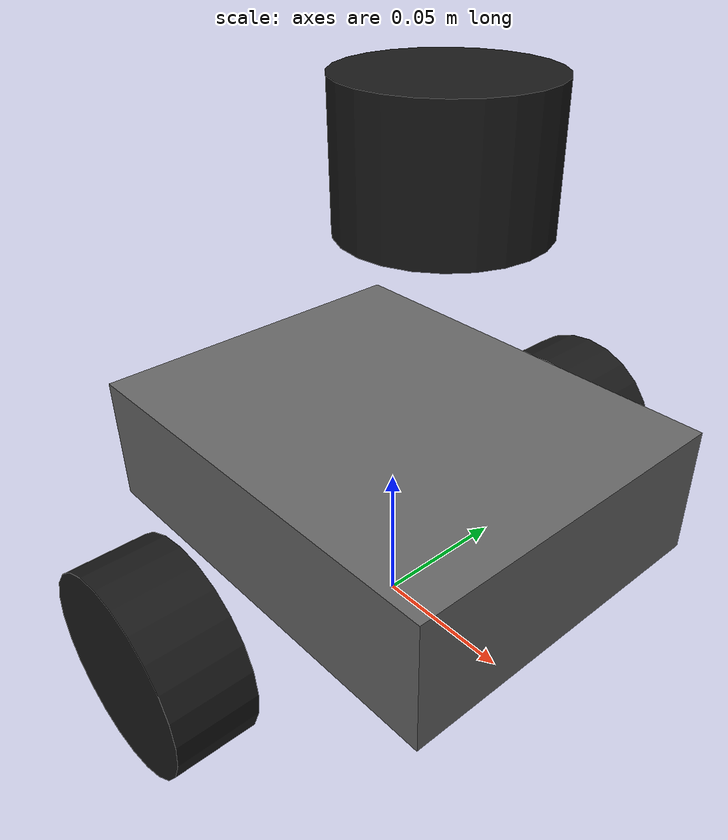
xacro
<?xml version="1.0"?>
<robot name="xe_tu_hanh" xmlns:xacro="http://www.ros.org/wiki/xacro">

  <!-- ==================== THAM SỐ CƠ KHÍ ==================== -->
  <xacro:property name="wheel_diameter"  value="0.065"/>   <!-- D = 65 mm -->
  <xacro:property name="wheel_radius"    value="${wheel_diameter/2}"/>
  <xacro:property name="wheel_track"     value="0.185"/>   <!-- L = 185 mm, TÂM-TÂM -->
  <xacro:property name="wheel_width"     value="0.026"/>
  <xacro:property name="wheel_mass"      value="0.045"/>

  <xacro:property name="chassis_len"     value="0.150"/>
  <xacro:property name="chassis_wid"     value="0.120"/>
  <xacro:property name="chassis_hgt"     value="0.045"/>
  <xacro:property name="chassis_mass"    value="0.400"/>

  <!-- Chiều cao trục bánh so với mặt đất = bán kính bánh -->
  <xacro:property name="axle_height"     value="${wheel_radius}"/>

  <!-- Vị trí LiDAR (gắn trên đỉnh cột). ĐO THỰC TẾ RỒI SỬA!
       Sai số ở đây trực tiếp làm lệch bản đồ. -->
  <xacro:property name="lidar_x"         value="0.020"/>
  <xacro:property name="lidar_y"         value="0.000"/>
  <xacro:property name="lidar_z"         value="${chassis_hgt + 0.085}"/>

  <!-- Vị trí IMU (đặt gần tâm quay để giảm gia tốc ly tâm) -->
  <xacro:property name="imu_x"           value="0.000"/>
  <xacro:property name="imu_y"           value="0.000"/>
  <xacro:property name="imu_z"           value="0.005"/>

  <!-- ==================== VẬT LIỆU ==================== -->
  <material name="xam">   <color rgba="0.4 0.4 0.4 1.0"/></material>
  <material name="den">   <color rgba="0.1 0.1 0.1 1.0"/></material>
  <material name="do">    <color rgba="0.8 0.1 0.1 1.0"/></material>
  <material name="xanh">  <color rgba="0.1 0.3 0.8 1.0"/></material>

  <!-- ==================== MACRO QUÁN TÍNH ==================== -->
  <xacro:macro name="khoi_hop" params="mass x y z">
    <inertial>
      <mass value="${mass}"/>
      <origin xyz="0 0 0"/>
      <inertia
        ixx="${mass*(y*y+z*z)/12.0}" ixy="0" ixz="0"
        iyy="${mass*(x*x+z*z)/12.0}" iyz="0"
        izz="${mass*(x*x+y*y)/12.0}"/>
    </inertial>
  </xacro:macro>

  <xacro:macro name="khoi_tru" params="mass radius length">
    <inertial>
      <mass value="${mass}"/>
      <origin xyz="0 0 0" rpy="0 0 0"/>
      <!-- trụ quay quanh trục y (bánh xe nằm ngang) -->
      <inertia
        ixx="${mass*(3*radius*radius + length*length)/12.0}" ixy="0" ixz="0"
        iyy="${mass*radius*radius/2.0}" iyz="0"
        izz="${mass*(3*radius*radius + length*length)/12.0}"/>
    </inertial>
  </xacro:macro>

  <link name="base_footprint"/>

  <joint name="base_footprint_to_base_link" type="fixed">
    <parent link="base_footprint"/>
    <child  link="base_link"/>
    <origin xyz="0 0 ${axle_height}" rpy="0 0 0"/>
  </joint>

  <!-- ==================================================================
       base_link — thân robot, gốc tại TÂM TRỤC BÁNH
       ================================================================== -->
  <link name="base_link">
    <visual>
      <origin xyz="0 0 ${chassis_hgt/2}" rpy="0 0 0"/>
      <geometry>
        <box size="${chassis_len} ${chassis_wid} ${chassis_hgt}"/>
      </geometry>
      <material name="xam"/>
    </visual>
    <collision>
      <origin xyz="0 0 ${chassis_hgt/2}" rpy="0 0 0"/>
      <geometry>
        <box size="${chassis_len} ${chassis_wid} ${chassis_hgt}"/>
      </geometry>
    </collision>
    <xacro:khoi_hop mass="${chassis_mass}"
                    x="${chassis_len}" y="${chassis_wid}" z="${chassis_hgt}"/>
  </link>

  <!-- ==================== BÁNH TRÁI ==================== -->
  <joint name="wheel_left_joint" type="continuous">
    <parent link="base_link"/>
    <child  link="wheel_left_link"/>
    <origin xyz="0 ${wheel_track/2} 0" rpy="${-pi/2} 0 0"/>
    <axis xyz="0 0 1"/>
    <dynamics damping="0.02" friction="0.05"/>
  </joint>

  <link name="wheel_left_link">
    <visual>
      <geometry><cylinder radius="${wheel_radius}" length="${wheel_width}"/></geometry>
      <material name="den"/>
    </visual>
    <collision>
      <geometry><cylinder radius="${wheel_radius}" length="${wheel_width}"/></geometry>
    </collision>
    <xacro:khoi_tru mass="${wheel_mass}"
                    radius="${wheel_radius}" length="${wheel_width}"/>
  </link>

  <!-- ==================== BÁNH PHẢI ==================== -->
  <joint name="wheel_right_joint" type="continuous">
    <parent link="base_link"/>
    <child  link="wheel_right_link"/>
    <origin xyz="0 ${-wheel_track/2} 0" rpy="${-pi/2} 0 0"/>
    <axis xyz="0 0 1"/>
    <dynamics damping="0.02" friction="0.05"/>
  </joint>

  <link name="wheel_right_link">
    <visual>
      <geometry><cylinder radius="${wheel_radius}" length="${wheel_width}"/></geometry>
      <material name="den"/>
    </visual>
    <collision>
      <geometry><cylinder radius="${wheel_radius}" length="${wheel_width}"/></geometry>
    </collision>
    <xacro:khoi_tru mass="${wheel_mass}"
                    radius="${wheel_radius}" length="${wheel_width}"/>
  </link>

  <joint name="caster_joint" type="fixed">
    <parent link="base_link"/>
    <child  link="caster_link"/>
    <origin xyz="${-(chassis_len/2 - 0.020)} 0 ${-axle_height + 0.0125}" rpy="0 0 0"/>
  </joint>

  <link name="caster_link">
    <visual>
      <geometry><sphere radius="0.0125"/></geometry>
      <material name="do"/>
    </visual>
    <collision>
      <geometry><sphere radius="0.0125"/></geometry>
    </collision>
    <inertial>
      <mass value="0.020"/>
      <inertia ixx="1.3e-6" ixy="0" ixz="0" iyy="1.3e-6" iyz="0" izz="1.3e-6"/>
    </inertial>
  </link>

  <!-- ==================== IMU ==================== -->
  <joint name="imu_joint" type="fixed">
    <parent link="base_link"/>
    <child  link="imu_link"/>
    <origin xyz="${imu_x} ${imu_y} ${imu_z}" rpy="0 0 0"/>
  </joint>

  <link name="imu_link">
    <visual>
      <geometry><box size="0.020 0.016 0.003"/></geometry>
      <material name="xanh"/>
    </visual>
    <inertial>
      <mass value="0.005"/>
      <inertia ixx="1e-7" ixy="0" ixz="0" iyy="1e-7" iyz="0" izz="1e-7"/>
    </inertial>
  </link>

  <!-- ==================== LiDAR ====================
       Frame này chỉ được dùng khi đã gắn LiDAR (GĐ 6). Trước đó vô hại.
       ============================================== -->
  <joint name="laser_joint" type="fixed">
    <parent link="base_link"/>
    <child  link="laser_frame"/>
    <origin xyz="${lidar_x} ${lidar_y} ${lidar_z}" rpy="0 0 0"/>
  </joint>

  <link name="laser_frame">
    <visual>
      <geometry><cylinder radius="0.030" length="0.040"/></geometry>
      <material name="den"/>
    </visual>
    <inertial>
      <mass value="0.170"/>
      <inertia ixx="8e-5" ixy="0" ixz="0" iyy="8e-5" iyz="0" izz="8e-5"/>
    </inertial>
  </link>

</robot>
